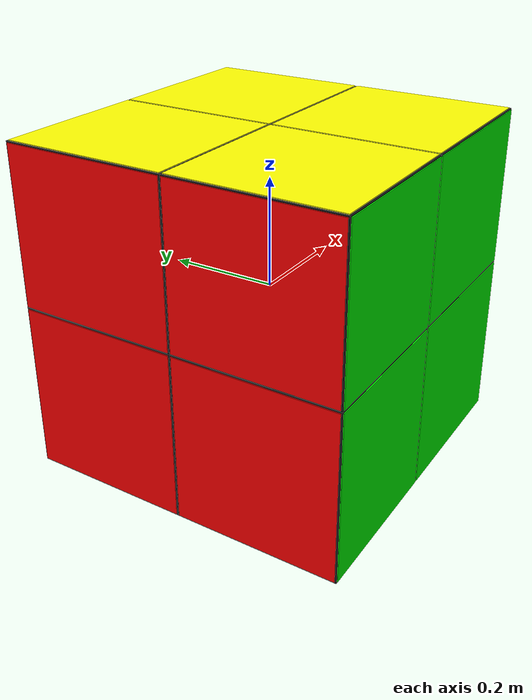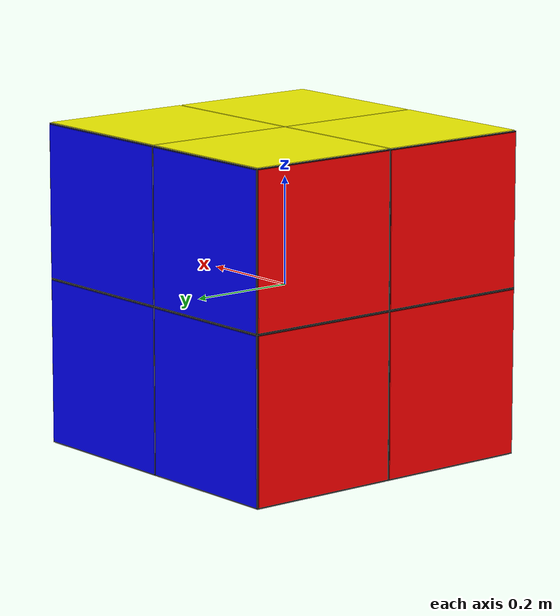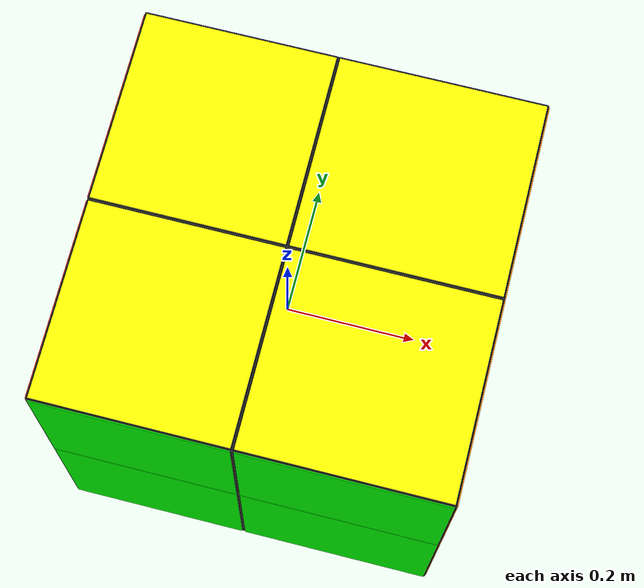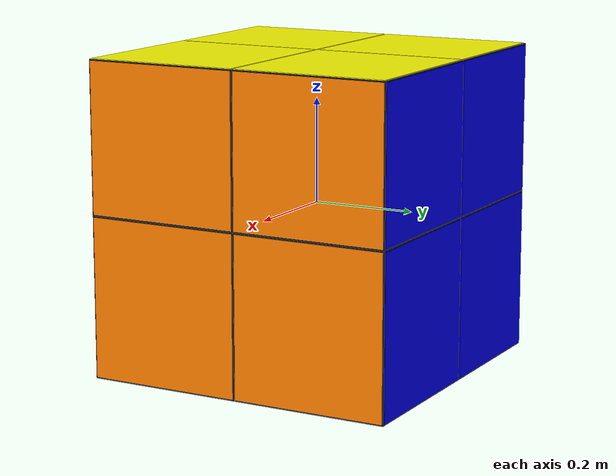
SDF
<?xml version="1.0" ?>
<sdf version="1.7">
	<model name="mirror_cube_2x2">
		<link name="center"/>
		<link name="cubie_0_0_0">
			<pose>-0.14504999999999998 -0.15005 -0.15505 0.0 0.0 0.0</pose>
			<inertial>
				<mass>10.518299999999998</mass>
				<inertia>
					<ixx>0.16312130249999998</ixx>
					<ixy>0.0</ixy>
					<ixz>0.0</ixz>
					<iyy>0.15794980499999997</iyy>
					<iyz>0.0</iyz>
					<izz>0.15260300249999997</izz>
				</inertia>
			</inertial>
			<collision name="collision">
				<geometry>
					<box>
						<size>0.29 0.3 0.31</size>
					</box>
				</geometry>
				<surface>
					<friction>
						<ode>
							<mu>0.6</mu>
							<mu2>0.6</mu2>
						</ode>
					</friction>
				</surface>
			</collision>
			<visual name="black">
				<geometry>
					<box>
						<size>0.29 0.3 0.31</size>
					</box>
				</geometry>
				<material>
					<diffuse>0 0 0 1</diffuse>
				</material>
			</visual>
			<visual name="red">
				<pose>-0.145 0.0 0.0 0.0 0.0 0.0</pose>
				<geometry>
					<box>
						<size>0.00285 0.295 0.305</size>
					</box>
				</geometry>
				<material>
					<diffuse>1 0 0 1</diffuse>
				</material>
			</visual>
			<visual name="green">
				<pose>0.0 -0.15 0.0 0.0 0.0 0.0</pose>
				<geometry>
					<box>
						<size>0.285 0.00295 0.305</size>
					</box>
				</geometry>
				<material>
					<diffuse>0 1 0 1</diffuse>
				</material>
			</visual>
			<visual name="white">
				<pose>0.0 0.0 -0.155 0.0 0.0 0.0</pose>
				<geometry>
					<box>
						<size>0.285 0.295 0.00305</size>
					</box>
				</geometry>
				<material>
					<diffuse>1 1 1 1</diffuse>
				</material>
			</visual>
		</link>
		<joint name="ball_0_0_0" type="ball">
			<pose>0.14504999999999998 0.15005 0.15505 -0.0 -0.0 -0.0</pose>
			<parent>center</parent>
			<child>cubie_0_0_0</child>
			<axis>
				<dynamics>
					<damping>0.1</damping>
				</dynamics>
				<limit>
					<effort>0</effort>
				</limit>
			</axis>
		</joint>
		<link name="cubie_0_0_1">
			<pose>-0.14504999999999998 -0.15005 0.14504999999999998 0.0 0.0 0.0</pose>
			<inertial>
				<mass>9.839699999999999</mass>
				<inertia>
					<ixx>0.14275764749999997</ixx>
					<ixy>0.0</ixy>
					<ixz>0.0</ixz>
					<iyy>0.13791979499999998</iyy>
					<iyz>0.0</iyz>
					<izz>0.14275764749999997</izz>
				</inertia>
			</inertial>
			<collision name="collision">
				<geometry>
					<box>
						<size>0.29 0.3 0.29</size>
					</box>
				</geometry>
				<surface>
					<friction>
						<ode>
							<mu>0.6</mu>
							<mu2>0.6</mu2>
						</ode>
					</friction>
				</surface>
			</collision>
			<visual name="black">
				<geometry>
					<box>
						<size>0.29 0.3 0.29</size>
					</box>
				</geometry>
				<material>
					<diffuse>0 0 0 1</diffuse>
				</material>
			</visual>
			<visual name="red">
				<pose>-0.145 0.0 0.0 0.0 0.0 0.0</pose>
				<geometry>
					<box>
						<size>0.00285 0.295 0.285</size>
					</box>
				</geometry>
				<material>
					<diffuse>1 0 0 1</diffuse>
				</material>
			</visual>
			<visual name="green">
				<pose>0.0 -0.15 0.0 0.0 0.0 0.0</pose>
				<geometry>
					<box>
						<size>0.285 0.00295 0.285</size>
					</box>
				</geometry>
				<material>
					<diffuse>0 1 0 1</diffuse>
				</material>
			</visual>
			<visual name="yellow">
				<pose>0.0 0.0 0.145 0.0 0.0 0.0</pose>
				<geometry>
					<box>
						<size>0.285 0.295 0.00285</size>
					</box>
				</geometry>
				<material>
					<diffuse>1 1 0 1</diffuse>
				</material>
			</visual>
		</link>
		<joint name="ball_0_0_1" type="ball">
			<pose>0.14504999999999998 0.15005 -0.14504999999999998 -0.0 -0.0 -0.0</pose>
			<parent>center</parent>
			<child>cubie_0_0_1</child>
			<axis>
				<dynamics>
					<damping>0.1</damping>
				</dynamics>
				<limit>
					<effort>0</effort>
				</limit>
			</axis>
		</joint>
		<link name="cubie_0_1_0">
			<pose>-0.14504999999999998 0.15005 -0.15505 0.0 0.0 0.0</pose>
			<inertial>
				<mass>10.518299999999998</mass>
				<inertia>
					<ixx>0.16312130249999998</ixx>
					<ixy>0.0</ixy>
					<ixz>0.0</ixz>
					<iyy>0.15794980499999997</iyy>
					<iyz>0.0</iyz>
					<izz>0.15260300249999997</izz>
				</inertia>
			</inertial>
			<collision name="collision">
				<geometry>
					<box>
						<size>0.29 0.3 0.31</size>
					</box>
				</geometry>
				<surface>
					<friction>
						<ode>
							<mu>0.6</mu>
							<mu2>0.6</mu2>
						</ode>
					</friction>
				</surface>
			</collision>
			<visual name="black">
				<geometry>
					<box>
						<size>0.29 0.3 0.31</size>
					</box>
				</geometry>
				<material>
					<diffuse>0 0 0 1</diffuse>
				</material>
			</visual>
			<visual name="red">
				<pose>-0.145 0.0 0.0 0.0 0.0 0.0</pose>
				<geometry>
					<box>
						<size>0.00285 0.295 0.305</size>
					</box>
				</geometry>
				<material>
					<diffuse>1 0 0 1</diffuse>
				</material>
			</visual>
			<visual name="blue">
				<pose>0.0 0.15 0.0 0.0 0.0 0.0</pose>
				<geometry>
					<box>
						<size>0.285 0.00295 0.305</size>
					</box>
				</geometry>
				<material>
					<diffuse>0 0 1 1</diffuse>
				</material>
			</visual>
			<visual name="white">
				<pose>0.0 0.0 -0.155 0.0 0.0 0.0</pose>
				<geometry>
					<box>
						<size>0.285 0.295 0.00305</size>
					</box>
				</geometry>
				<material>
					<diffuse>1 1 1 1</diffuse>
				</material>
			</visual>
		</link>
		<joint name="ball_0_1_0" type="ball">
			<pose>0.14504999999999998 -0.15005 0.15505 -0.0 -0.0 -0.0</pose>
			<parent>center</parent>
			<child>cubie_0_1_0</child>
			<axis>
				<dynamics>
					<damping>0.1</damping>
				</dynamics>
				<limit>
					<effort>0</effort>
				</limit>
			</axis>
		</joint>
		<link name="cubie_0_1_1">
			<pose>-0.14504999999999998 0.15005 0.14504999999999998 0.0 0.0 0.0</pose>
			<inertial>
				<mass>9.839699999999999</mass>
				<inertia>
					<ixx>0.14275764749999997</ixx>
					<ixy>0.0</ixy>
					<ixz>0.0</ixz>
					<iyy>0.13791979499999998</iyy>
					<iyz>0.0</iyz>
					<izz>0.14275764749999997</izz>
				</inertia>
			</inertial>
			<collision name="collision">
				<geometry>
					<box>
						<size>0.29 0.3 0.29</size>
					</box>
				</geometry>
				<surface>
					<friction>
						<ode>
							<mu>0.6</mu>
							<mu2>0.6</mu2>
						</ode>
					</friction>
				</surface>
			</collision>
			<visual name="black">
				<geometry>
					<box>
						<size>0.29 0.3 0.29</size>
					</box>
				</geometry>
				<material>
					<diffuse>0 0 0 1</diffuse>
				</material>
			</visual>
			<visual name="red">
				<pose>-0.145 0.0 0.0 0.0 0.0 0.0</pose>
				<geometry>
					<box>
						<size>0.00285 0.295 0.285</size>
					</box>
				</geometry>
				<material>
					<diffuse>1 0 0 1</diffuse>
				</material>
			</visual>
			<visual name="blue">
				<pose>0.0 0.15 0.0 0.0 0.0 0.0</pose>
				<geometry>
					<box>
						<size>0.285 0.00295 0.285</size>
					</box>
				</geometry>
				<material>
					<diffuse>0 0 1 1</diffuse>
				</material>
			</visual>
			<visual name="yellow">
				<pose>0.0 0.0 0.145 0.0 0.0 0.0</pose>
				<geometry>
					<box>
						<size>0.285 0.295 0.00285</size>
					</box>
				</geometry>
				<material>
					<diffuse>1 1 0 1</diffuse>
				</material>
			</visual>
		</link>
		<joint name="ball_0_1_1" type="ball">
			<pose>0.14504999999999998 -0.15005 -0.14504999999999998 -0.0 -0.0 -0.0</pose>
			<parent>center</parent>
			<child>cubie_0_1_1</child>
			<axis>
				<dynamics>
					<damping>0.1</damping>
				</dynamics>
				<limit>
					<effort>0</effort>
				</limit>
			</axis>
		</joint>
		<link name="cubie_1_0_0">
			<pose>0.15505 -0.15005 -0.15505 0.0 0.0 0.0</pose>
			<inertial>
				<mass>11.243699999999999</mass>
				<inertia>
					<ixx>0.17437104749999996</ixx>
					<ixy>0.0</ixy>
					<ixz>0.0</ixz>
					<iyy>0.180086595</iyy>
					<iyz>0.0</iyz>
					<izz>0.17437104749999996</izz>
				</inertia>
			</inertial>
			<collision name="collision">
				<geometry>
					<box>
						<size>0.31 0.3 0.31</size>
					</box>
				</geometry>
				<surface>
					<friction>
						<ode>
							<mu>0.6</mu>
							<mu2>0.6</mu2>
						</ode>
					</friction>
				</surface>
			</collision>
			<visual name="black">
				<geometry>
					<box>
						<size>0.31 0.3 0.31</size>
					</box>
				</geometry>
				<material>
					<diffuse>0 0 0 1</diffuse>
				</material>
			</visual>
			<visual name="orange">
				<pose>0.155 0.0 0.0 0.0 0.0 0.0</pose>
				<geometry>
					<box>
						<size>0.00305 0.295 0.305</size>
					</box>
				</geometry>
				<material>
					<diffuse>1.0 0.5 0.0 1.0</diffuse>
				</material>
			</visual>
			<visual name="green">
				<pose>0.0 -0.15 0.0 0.0 0.0 0.0</pose>
				<geometry>
					<box>
						<size>0.305 0.00295 0.305</size>
					</box>
				</geometry>
				<material>
					<diffuse>0 1 0 1</diffuse>
				</material>
			</visual>
			<visual name="white">
				<pose>0.0 0.0 -0.155 0.0 0.0 0.0</pose>
				<geometry>
					<box>
						<size>0.305 0.295 0.00305</size>
					</box>
				</geometry>
				<material>
					<diffuse>1 1 1 1</diffuse>
				</material>
			</visual>
		</link>
		<joint name="ball_1_0_0" type="ball">
			<pose>-0.15505 0.15005 0.15505 -0.0 -0.0 -0.0</pose>
			<parent>center</parent>
			<child>cubie_1_0_0</child>
			<axis>
				<dynamics>
					<damping>0.1</damping>
				</dynamics>
				<limit>
					<effort>0</effort>
				</limit>
			</axis>
		</joint>
		<link name="cubie_1_0_1">
			<pose>0.15505 -0.15005 0.14504999999999998 0.0 0.0 0.0</pose>
			<inertial>
				<mass>10.518299999999998</mass>
				<inertia>
					<ixx>0.15260300249999997</ixx>
					<ixy>0.0</ixy>
					<ixz>0.0</ixz>
					<iyy>0.15794980499999997</iyy>
					<iyz>0.0</iyz>
					<izz>0.16312130249999998</izz>
				</inertia>
			</inertial>
			<collision name="collision">
				<geometry>
					<box>
						<size>0.31 0.3 0.29</size>
					</box>
				</geometry>
				<surface>
					<friction>
						<ode>
							<mu>0.6</mu>
							<mu2>0.6</mu2>
						</ode>
					</friction>
				</surface>
			</collision>
			<visual name="black">
				<geometry>
					<box>
						<size>0.31 0.3 0.29</size>
					</box>
				</geometry>
				<material>
					<diffuse>0 0 0 1</diffuse>
				</material>
			</visual>
			<visual name="orange">
				<pose>0.155 0.0 0.0 0.0 0.0 0.0</pose>
				<geometry>
					<box>
						<size>0.00305 0.295 0.285</size>
					</box>
				</geometry>
				<material>
					<diffuse>1.0 0.5 0.0 1.0</diffuse>
				</material>
			</visual>
			<visual name="green">
				<pose>0.0 -0.15 0.0 0.0 0.0 0.0</pose>
				<geometry>
					<box>
						<size>0.305 0.00295 0.285</size>
					</box>
				</geometry>
				<material>
					<diffuse>0 1 0 1</diffuse>
				</material>
			</visual>
			<visual name="yellow">
				<pose>0.0 0.0 0.145 0.0 0.0 0.0</pose>
				<geometry>
					<box>
						<size>0.305 0.295 0.00285</size>
					</box>
				</geometry>
				<material>
					<diffuse>1 1 0 1</diffuse>
				</material>
			</visual>
		</link>
		<joint name="ball_1_0_1" type="ball">
			<pose>-0.15505 0.15005 -0.14504999999999998 -0.0 -0.0 -0.0</pose>
			<parent>center</parent>
			<child>cubie_1_0_1</child>
			<axis>
				<dynamics>
					<damping>0.1</damping>
				</dynamics>
				<limit>
					<effort>0</effort>
				</limit>
			</axis>
		</joint>
		<link name="cubie_1_1_0">
			<pose>0.15505 0.15005 -0.15505 0.0 0.0 0.0</pose>
			<inertial>
				<mass>11.243699999999999</mass>
				<inertia>
					<ixx>0.17437104749999996</ixx>
					<ixy>0.0</ixy>
					<ixz>0.0</ixz>
					<iyy>0.180086595</iyy>
					<iyz>0.0</iyz>
					<izz>0.17437104749999996</izz>
				</inertia>
			</inertial>
			<collision name="collision">
				<geometry>
					<box>
						<size>0.31 0.3 0.31</size>
					</box>
				</geometry>
				<surface>
					<friction>
						<ode>
							<mu>0.6</mu>
							<mu2>0.6</mu2>
						</ode>
					</friction>
				</surface>
			</collision>
			<visual name="black">
				<geometry>
					<box>
						<size>0.31 0.3 0.31</size>
					</box>
				</geometry>
				<material>
					<diffuse>0 0 0 1</diffuse>
				</material>
			</visual>
			<visual name="orange">
				<pose>0.155 0.0 0.0 0.0 0.0 0.0</pose>
				<geometry>
					<box>
						<size>0.00305 0.295 0.305</size>
					</box>
				</geometry>
				<material>
					<diffuse>1.0 0.5 0.0 1.0</diffuse>
				</material>
			</visual>
			<visual name="blue">
				<pose>0.0 0.15 0.0 0.0 0.0 0.0</pose>
				<geometry>
					<box>
						<size>0.305 0.00295 0.305</size>
					</box>
				</geometry>
				<material>
					<diffuse>0 0 1 1</diffuse>
				</material>
			</visual>
			<visual name="white">
				<pose>0.0 0.0 -0.155 0.0 0.0 0.0</pose>
				<geometry>
					<box>
						<size>0.305 0.295 0.00305</size>
					</box>
				</geometry>
				<material>
					<diffuse>1 1 1 1</diffuse>
				</material>
			</visual>
		</link>
		<joint name="ball_1_1_0" type="ball">
			<pose>-0.15505 -0.15005 0.15505 -0.0 -0.0 -0.0</pose>
			<parent>center</parent>
			<child>cubie_1_1_0</child>
			<axis>
				<dynamics>
					<damping>0.1</damping>
				</dynamics>
				<limit>
					<effort>0</effort>
				</limit>
			</axis>
		</joint>
		<link name="cubie_1_1_1">
			<pose>0.15505 0.15005 0.14504999999999998 0.0 0.0 0.0</pose>
			<inertial>
				<mass>10.518299999999998</mass>
				<inertia>
					<ixx>0.15260300249999997</ixx>
					<ixy>0.0</ixy>
					<ixz>0.0</ixz>
					<iyy>0.15794980499999997</iyy>
					<iyz>0.0</iyz>
					<izz>0.16312130249999998</izz>
				</inertia>
			</inertial>
			<collision name="collision">
				<geometry>
					<box>
						<size>0.31 0.3 0.29</size>
					</box>
				</geometry>
				<surface>
					<friction>
						<ode>
							<mu>0.6</mu>
							<mu2>0.6</mu2>
						</ode>
					</friction>
				</surface>
			</collision>
			<visual name="black">
				<geometry>
					<box>
						<size>0.31 0.3 0.29</size>
					</box>
				</geometry>
				<material>
					<diffuse>0 0 0 1</diffuse>
				</material>
			</visual>
			<visual name="orange">
				<pose>0.155 0.0 0.0 0.0 0.0 0.0</pose>
				<geometry>
					<box>
						<size>0.00305 0.295 0.285</size>
					</box>
				</geometry>
				<material>
					<diffuse>1.0 0.5 0.0 1.0</diffuse>
				</material>
			</visual>
			<visual name="blue">
				<pose>0.0 0.15 0.0 0.0 0.0 0.0</pose>
				<geometry>
					<box>
						<size>0.305 0.00295 0.285</size>
					</box>
				</geometry>
				<material>
					<diffuse>0 0 1 1</diffuse>
				</material>
			</visual>
			<visual name="yellow">
				<pose>0.0 0.0 0.145 0.0 0.0 0.0</pose>
				<geometry>
					<box>
						<size>0.305 0.295 0.00285</size>
					</box>
				</geometry>
				<material>
					<diffuse>1 1 0 1</diffuse>
				</material>
			</visual>
		</link>
		<joint name="ball_1_1_1" type="ball">
			<pose>-0.15505 -0.15005 -0.14504999999999998 -0.0 -0.0 -0.0</pose>
			<parent>center</parent>
			<child>cubie_1_1_1</child>
			<axis>
				<dynamics>
					<damping>0.1</damping>
				</dynamics>
				<limit>
					<effort>0</effort>
				</limit>
			</axis>
		</joint>
	</model>
</sdf>
